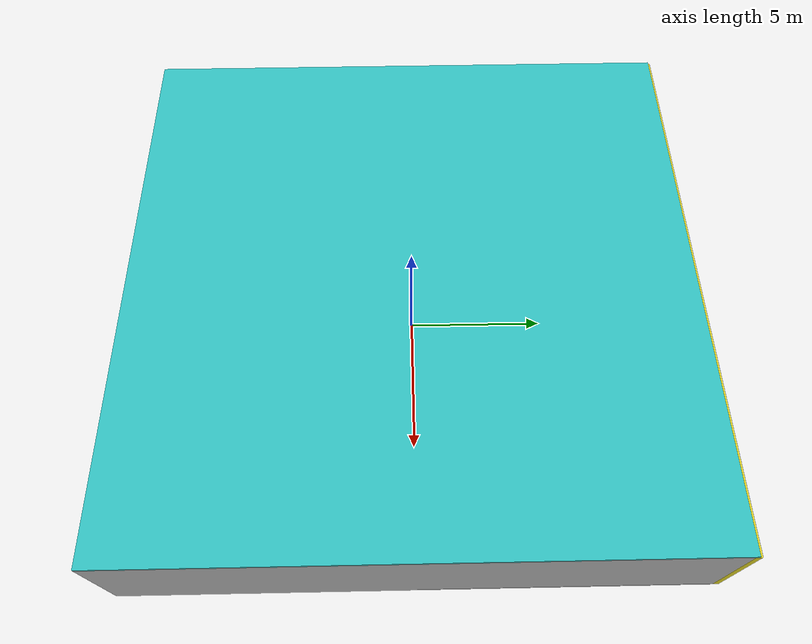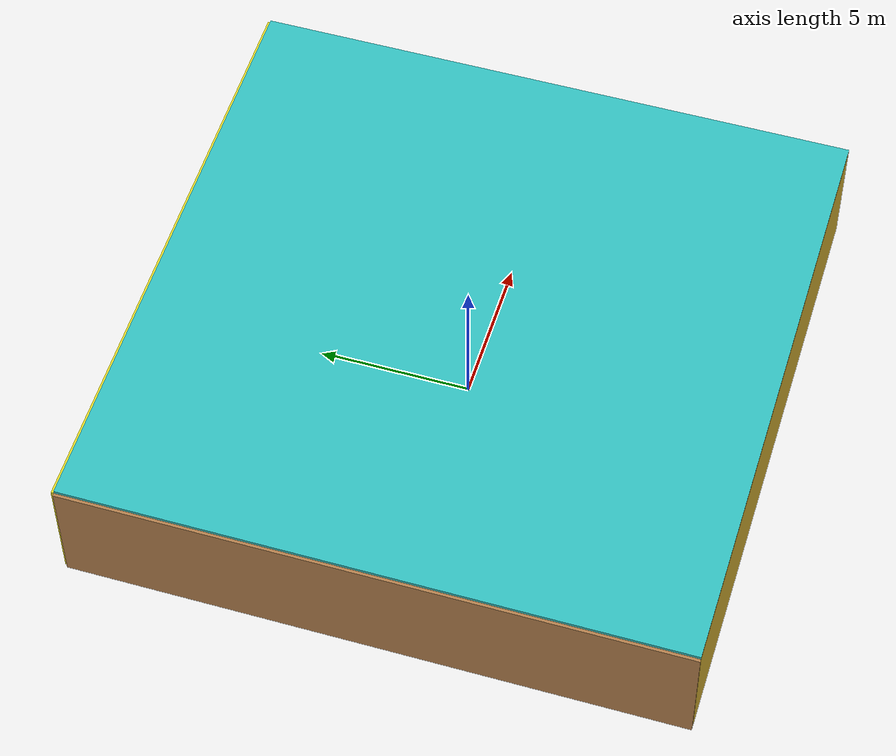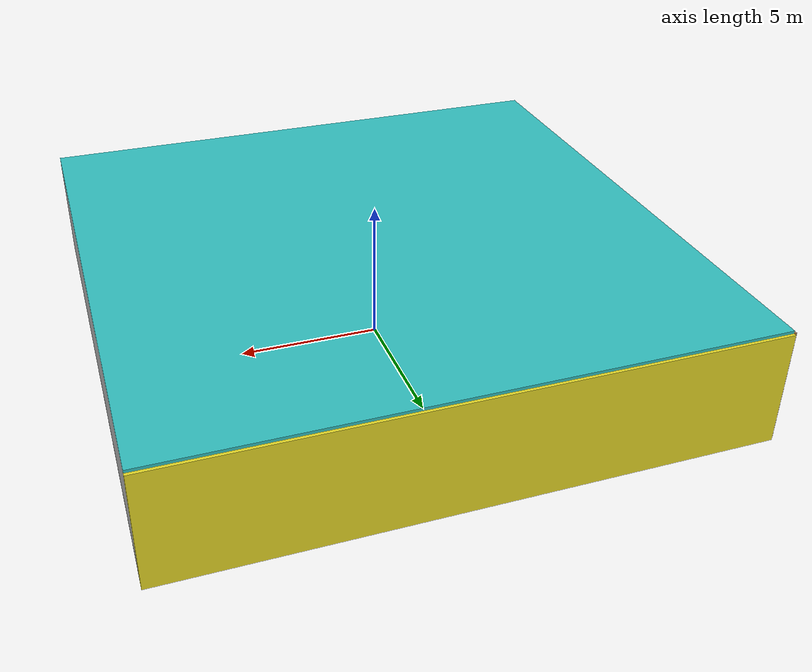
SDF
<sdf version="1.4">
 <world name="default">
  <physics type="ode">
   <max_step_size>0.001</max_step_size>
   <real_time_factor>1</real_time_factor>
   <real_time_update_rate>1000</real_time_update_rate>
   <gravity>0 0 -9.8</gravity>
  </physics>
  <scene><ambient>0.4 0.4 0.4 1</ambient><background>0.7 0.7 0.7 1</background><shadows>1</shadows></scene>
  <model name="Surrounding">
   <static>1</static>
   <link name="Ceiling">
    <collision name="Ceiling_Collision"><geometry><box><size>20 20 0.1</size></box></geometry></collision>
    <visual name="Ceiling_Visual">
     <geometry><box><size>20 20 0.1</size></box></geometry>
     <material>
      <script><uri>file://media/materials/scripts/gazebo.material</uri><name>Gazebo/Turquoise</name></script>
     </material>
    </visual>
    <pose>0 0 4.05 0 0 0</pose>
   </link>
   <link name="Wall_South">
    <collision name="Wall_South_Collision">
     <geometry><box><size>20 0 4</size></box></geometry>
     <pose>0 0 2 0 -0 0</pose>
    </collision>
    <visual name="Wall_South_Visual">
     <pose>0 0 2 0 -0 0</pose>
     <geometry><box><size>20 0 4</size></box></geometry>
     <material>
      <script><uri>file://media/materials/scripts/gazebo.material</uri><name>Gazebo/Gold</name></script>
     </material>
    </visual>
    <velocity_decay><linear>0</linear><angular>0</angular></velocity_decay>
    <pose>0 -10 0 0 -0 0</pose>
   </link>
   <link name="Wall_East">
    <collision name="Wall_21_Collision">
     <geometry><box><size>20 0 4</size></box></geometry>
     <pose>0 0 2 0 -0 0</pose>
    </collision>
    <visual name="Wall_21_Visual">
     <pose>0 0 2 0 -0 0</pose>
     <geometry><box><size>20 0 4</size></box></geometry>
     <material>
      <script><uri>file://media/materials/scripts/gazebo.material</uri><name>Gazebo/LightOff</name></script>
     </material>
    </visual>
    <velocity_decay><linear>0</linear><angular>0</angular></velocity_decay>
    <pose>10 0 0 0 -0 1.5708</pose>
   </link>
   <link name="Wall_North">
    <collision name="Wall_22_Collision">
     <geometry><box><size>20 0.2 4</size></box></geometry>
     <pose>0 0 2 0 -0 0</pose>
    </collision>
    <visual name="Wall_22_Visual">
     <pose>0 0 2 0 -0 0</pose>
     <geometry><box><size>20 0.2 4</size></box></geometry>
     <material>
      <script><uri>file://media/materials/scripts/gazebo.material</uri><name>Gazebo/YellowGlow</name></script>
     </material>
    </visual>
    <velocity_decay><linear>0</linear><angular>0</angular></velocity_decay>
    <pose>0 10 0 0 -0 0</pose>
   </link>
   <link name="Wall_West">
    <collision name="Wall_23_Collision">
     <geometry><box><size>20 0.2 4</size></box></geometry>
     <pose>0 0 2 0 -0 0</pose>
    </collision>
    <visual name="Wall_23_Visual">
     <pose>0 0 2 0 -0 0</pose>
     <geometry><box><size>20 0.2 4</size></box></geometry>
     <material>
      <script><uri>file://media/materials/scripts/gazebo.material</uri><name>Gazebo/WoodPallet</name></script>
     </material>
    </visual>
    <velocity_decay><linear>0</linear><angular>0</angular></velocity_decay>
    <pose>-10 0 0 0 0 -1.5708</pose>
   </link>
   <link name="Ground_link">
    <collision name="collision">
     <pose>0 0 .05 0 -0 0</pose>
     <geometry><box><size>20 20 0.1</size></box></geometry>
    </collision>
    <visual name="visual">
     <pose>0 0 .05 0 -0 0</pose>
     <geometry><box><size>20 20 0.1</size></box></geometry>
     <material>
      <script><uri>file://media/materials/scripts/gazebo.material</uri><name>Gazebo/Pioneer2Body</name></script>
     </material>
    </visual>
   </link>
   <static>1</static>
  </model>
  <spherical_coordinates>
   <surface_model>EARTH_WGS84</surface_model>
   <latitude_deg>0</latitude_deg>
   <longitude_deg>0</longitude_deg>
   <elevation>0</elevation>
   <heading_deg>0</heading_deg>
  </spherical_coordinates>
  <light name="lightball_0" type="diffuse">
   <diffuse>0.8 0.8 0.8 1</diffuse>
   <specular>0.2 0.2 0.2 1</specular>
   <attenuation>
    <range>100</range>
    <constant>0.7</constant>
    <linear>0.01</linear>
    <quadratic>0.001</quadratic>
   </attenuation>
   <direction>-0.5 0.1 -0.9</direction>
   <pose>9.4971725457 1.65004706987 3.30557787476 0 0 0</pose>
  </light>
  <light name="lightball_1" type="diffuse">
   <diffuse>0.8 0.8 0.8 1</diffuse>
   <specular>0.2 0.2 0.2 1</specular>
   <attenuation>
    <range>100</range>
    <constant>0.7</constant>
    <linear>0.01</linear>
    <quadratic>0.001</quadratic>
   </attenuation>
   <direction>-0.5 0.1 -0.9</direction>
   <pose>-4.82446092833 5.16163175182 3.50835382492 0 0 0</pose>
  </light>
  <light name="lightball_2" type="diffuse">
   <diffuse>0.8 0.8 0.8 1</diffuse>
   <specular>0.2 0.2 0.2 1</specular>
   <attenuation>
    <range>100</range>
    <constant>0.7</constant>
    <linear>0.01</linear>
    <quadratic>0.001</quadratic>
   </attenuation>
   <direction>-0.5 0.1 -0.9</direction>
   <pose>-7.69278847775 8.29898351584 2.26286584602 0 0 0</pose>
  </light>
  <light name="lightball_3" type="diffuse">
   <diffuse>0.8 0.8 0.8 1</diffuse>
   <specular>0.2 0.2 0.2 1</specular>
   <attenuation>
    <range>100</range>
    <constant>0.7</constant>
    <linear>0.01</linear>
    <quadratic>0.001</quadratic>
   </attenuation>
   <direction>-0.5 0.1 -0.9</direction>
   <pose>9.05636756897 -4.74955737765 3.71653013308 0 0 0</pose>
  </light>
  <light name="lightball_4" type="diffuse">
   <diffuse>0.8 0.8 0.8 1</diffuse>
   <specular>0.2 0.2 0.2 1</specular>
   <attenuation>
    <range>100</range>
    <constant>0.7</constant>
    <linear>0.01</linear>
    <quadratic>0.001</quadratic>
   </attenuation>
   <direction>-0.5 0.1 -0.9</direction>
   <pose>-2.58486059557 -0.420975342949 2.40709654595 0 0 0</pose>
  </light>
  <light name="lightball_5" type="diffuse">
   <diffuse>0.8 0.8 0.8 1</diffuse>
   <specular>0.2 0.2 0.2 1</specular>
   <attenuation>
    <range>100</range>
    <constant>0.7</constant>
    <linear>0.01</linear>
    <quadratic>0.001</quadratic>
   </attenuation>
   <direction>-0.5 0.1 -0.9</direction>
   <pose>-8.71350002522 -5.25332078217 2.59088918427 0 0 0</pose>
  </light>
  <light name="lightball_6" type="diffuse">
   <diffuse>0.8 0.8 0.8 1</diffuse>
   <specular>0.2 0.2 0.2 1</specular>
   <attenuation>
    <range>100</range>
    <constant>0.7</constant>
    <linear>0.01</linear>
    <quadratic>0.001</quadratic>
   </attenuation>
   <direction>-0.5 0.1 -0.9</direction>
   <pose>-5.46513274 -8.00563826983 1.19089204876 0 0 0</pose>
  </light>
  <include><uri>model://table</uri><pose>-1.9689372605 0.682289745217 0 0 0 2.81082553212</pose></include>
  <include>
   <uri>model://construction_cone</uri>
   <pose>1.67104814357 -5.21771937815 0 0 0 1.55379448162</pose>
  </include>
  <include>
   <uri>model://robocup_3Dsim_goal</uri>
   <pose>0.470853884327 0.420834167346 0 0 0 1.41658284812</pose>
  </include>
  <include>
   <uri>model://textured_shapes</uri>
   <pose>0.588339088795 7.61698197995 0 0 0 1.27299353727</pose>
  </include>
  <include><uri>model://cabinet</uri><pose>5.01191680327 2.59693181139 0 0 0 0.189749778392</pose></include>
 </world>
</sdf>

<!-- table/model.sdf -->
<sdf version="1.5">
  <model name="table">
    <static>true</static>
    <link name="link">
      <collision name="surface">
        <pose>0 0 1.0 0 0 0</pose>
        <geometry>
          <box>
            <size>1.5 0.8 0.03</size>
          </box>
        </geometry>
        <surface>
          <friction>
            <ode>
              <mu>0.6</mu>
              <mu2>0.6</mu2>
            </ode>
          </friction>
        </surface>
      </collision>
      <visual name="visual1">
        <pose>0 0 1.0 0 0 0</pose>
        <geometry>
          <box>
            <size>1.5 0.8 0.03</size>
          </box>
        </geometry>
        <material>
          <script>
            <uri>model://media/materials/scripts/gazebo.material</uri>
            <name>Gazebo/Wood</name>
          </script>
        </material>
      </visual>
      <collision name="front_left_leg">
        <pose>0.68 0.38 0.5 0 0 0</pose>
        <geometry>
          <cylinder>
            <radius>0.02</radius>
            <length>1.0</length>
          </cylinder>
        </geometry>
      </collision>
      <visual name="front_left_leg">
        <pose>0.68 0.38 0.5 0 0 0</pose>
        <geometry>
          <cylinder>
            <radius>0.02</radius>
            <length>1.0</length>
          </cylinder>
        </geometry>
        <material>
          <script>
            <uri>model://media/materials/scripts/gazebo.material</uri>
            <name>Gazebo/Grey</name>
          </script>
        </material>
      </visual>
      <collision name="front_right_leg">
        <pose>0.68 -0.38 0.5 0 0 0</pose>
        <geometry>
          <cylinder>
            <radius>0.02</radius>
            <length>1.0</length>
          </cylinder>
        </geometry>
      </collision>
      <visual name="front_right_leg">
        <pose>0.68 -0.38 0.5 0 0 0</pose>
        <geometry>
          <cylinder>
            <radius>0.02</radius>
            <length>1.0</length>
          </cylinder>
        </geometry>
        <material>
          <script>
            <uri>model://media/materials/scripts/gazebo.material</uri>
            <name>Gazebo/Grey</name>
          </script>
        </material>
      </visual>
      <collision name="back_right_leg">
        <pose>-0.68 -0.38 0.5 0 0 0</pose>
        <geometry>
          <cylinder>
            <radius>0.02</radius>
            <length>1.0</length>
          </cylinder>
        </geometry>
      </collision>
      <visual name="back_right_leg">
        <pose>-0.68 -0.38 0.5 0 0 0</pose>
        <geometry>
          <cylinder>
            <radius>0.02</radius>
            <length>1.0</length>
          </cylinder>
        </geometry>
        <material>
          <script>
            <uri>model://media/materials/scripts/gazebo.material</uri>
            <name>Gazebo/Grey</name>
          </script>
        </material>
      </visual>
      <collision name="back_left_leg">
        <pose>-0.68 0.38 0.5 0 0 0</pose>
        <geometry>
          <cylinder>
            <radius>0.02</radius>
            <length>1.0</length>
          </cylinder>
        </geometry>
      </collision>
      <visual name="back_left_leg">
        <pose>-0.68 0.38 0.5 0 0 0</pose>
        <geometry>
          <cylinder>
            <radius>0.02</radius>
            <length>1.0</length>
          </cylinder>
        </geometry>
        <material>
          <script>
            <uri>model://media/materials/scripts/gazebo.material</uri>
            <name>Gazebo/Grey</name>
          </script>
        </material>
      </visual>
    </link>
  </model>
</sdf>

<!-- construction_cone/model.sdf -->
<sdf version="1.5">
  <model name="Construction Cone">
    <link name="link">
      <collision name="collision">
        <geometry>
          <mesh>
            <scale>10 10 10</scale>
            <uri>file://isr-testbed/construction_cone/meshes/construction_cone.dae</uri>
          </mesh>
        </geometry>
      </collision>
      <visual name="visual">
        <geometry>
          <mesh>
            <scale>10 10 10</scale>
            <uri>file://isr-testbed/construction_cone/meshes/construction_cone.dae</uri>
          </mesh>
        </geometry>
      </visual>
    </link>
  </model>
</sdf>

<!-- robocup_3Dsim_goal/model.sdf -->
<sdf version="1.5">
  <model name="robocup_3d_goal">
    <static>true</static>
    <link name="left_post">
      <pose>0 1.05 0.45 0 0 0</pose>
      <collision name="collision">
        <geometry>
          <cylinder>
            <radius>0.05</radius>
            <length>0.9</length>
          </cylinder>
        </geometry>
      </collision>
      <visual name="visual">
        <geometry>
          <cylinder>
            <radius>0.05</radius>
            <length>0.9</length>
          </cylinder>
        </geometry>
        <material>
          <script>
            <uri>file://media/materials/scripts/gazebo.material</uri>
            <name>Gazebo/ZincYellow</name>
          </script>
        </material>
      </visual>
    </link>
    <link name="left_support_horiz_lower">
      <pose>0.30 1.05 0.01 0 0 0</pose>
      <collision name="collision">
        <geometry>
          <box>
            <size>0.50 0.02 0.02</size>
          </box>
        </geometry>
      </collision>
      <visual name="visual">
        <geometry>
          <box>
            <size>0.50 0.02 0.02</size>
          </box>
        </geometry>
        <material>
          <script>
            <uri>file://media/materials/scripts/gazebo.material</uri>
            <name>Gazebo/White</name>
          </script>
        </material>
      </visual>
    </link>
    <link name="left_support_horiz_upper">
      <pose>0.30 1.05 0.79 0 0 0</pose>
      <collision name="collision">
        <geometry>
          <box>
            <size>0.50 0.02 0.02</size>
          </box>
        </geometry>
      </collision>
      <visual name="visual">
        <geometry>
          <box>
            <size>0.50 0.02 0.02</size>
          </box>
        </geometry>
        <material>
          <script>
            <uri>file://media/materials/scripts/gazebo.material</uri>
            <name>Gazebo/White</name>
          </script>
        </material>
      </visual>
    </link>
    <link name="left_support_vertical">
      <pose>0.56 1.05 0.4 0 1.5708 0</pose>
      <collision name="collision">
        <geometry>
          <box>
            <size>0.80 0.02 0.02</size>
          </box>
        </geometry>
      </collision>
      <visual name="visual">
        <geometry>
          <box>
            <size>0.80 0.02 0.02</size>
          </box>
        </geometry>
        <material>
          <script>
            <uri>file://media/materials/scripts/gazebo.material</uri>
            <name>Gazebo/White</name>
          </script>
        </material>
      </visual>
    </link>
    <link name="right_support_horiz_lower">
      <pose>0.30 -1.05 0.01 0 0 0</pose>
      <collision name="collision">
        <geometry>
          <box>
            <size>0.50 0.02 0.02</size>
          </box>
        </geometry>
      </collision>
      <visual name="visual">
        <geometry>
          <box>
            <size>0.50 0.02 0.02</size>
          </box>
        </geometry>
        <material>
          <script>
            <uri>file://media/materials/scripts/gazebo.material</uri>
            <name>Gazebo/White</name>
          </script>
        </material>
      </visual>
    </link>
    <link name="right_support_horiz_upper">
      <pose>0.30 -1.05 0.79 0 0 0</pose>
      <collision name="collision">
        <geometry>
          <box>
            <size>0.50 0.02 0.02</size>
          </box>
        </geometry>
      </collision>
      <visual name="visual">
        <geometry>
          <box>
            <size>0.50 0.02 0.02</size>
          </box>
        </geometry>
        <material>
          <script>
            <uri>file://media/materials/scripts/gazebo.material</uri>
            <name>Gazebo/White</name>
          </script>
        </material>
      </visual>
    </link>
    <link name="right_support_vertical">
      <pose>0.56 -1.05 0.4 0 1.5708 0</pose>
      <collision name="collision">
        <geometry>
          <box>
            <size>0.80 0.02 0.02</size>
          </box>
        </geometry>
      </collision>
      <visual name="visual">
        <geometry>
          <box>
            <size>0.80 0.02 0.02</size>
          </box>
        </geometry>
        <material>
          <script>
            <uri>file://media/materials/scripts/gazebo.material</uri>
            <name>Gazebo/White</name>
          </script>
        </material>
      </visual>
    </link>
    <link name="center_support_horiz_lower">
      <pose>0.56 0 0.01 0 1.5708 0</pose>
      <collision name="collision">
        <geometry>
          <box>
            <size>0.02 2.08 0.02</size>
          </box>
        </geometry>
      </collision>
      <visual name="visual">
        <geometry>
          <box>
            <size>0.02 2.08 0.02</size>
          </box>
        </geometry>
        <material>
          <script>
            <uri>file://media/materials/scripts/gazebo.material</uri>
            <name>Gazebo/White</name>
          </script>
        </material>
      </visual>
    </link>
    <link name="center_support_horiz_upper">
      <pose>0.56 0 0.79 0 1.5708 0</pose>
      <collision name="collision">
        <geometry>
          <box>
            <size>0.02 2.08 0.02</size>
          </box>
        </geometry>
      </collision>
      <visual name="visual">
        <geometry>
          <box>
            <size>0.02 2.08 0.02</size>
          </box>
        </geometry>
        <material>
          <script>
            <uri>file://media/materials/scripts/gazebo.material</uri>
            <name>Gazebo/White</name>
          </script>
        </material>
      </visual>
    </link>
    <link name="right_post">
      <pose>0 -1.05 0.45 0 0 0</pose>
      <collision name="collision">
        <geometry>
          <cylinder>
            <radius>0.05</radius>
            <length>0.9</length>
          </cylinder>
        </geometry>
      </collision>
      <visual name="visual">
        <geometry>
          <cylinder>
            <radius>0.05</radius>
            <length>0.9</length>
          </cylinder>
        </geometry>
        <material>
          <script>
            <uri>file://media/materials/scripts/gazebo.material</uri>
            <name>Gazebo/ZincYellow</name>
          </script>
        </material>
      </visual>
    </link>
    <link name="crossbar">
      <pose>0 0 0.85 1.57 1.57 0</pose>
      <collision name="collision">
        <geometry>
          <cylinder>
            <radius>0.05</radius>
            <length>2.0</length>
          </cylinder>
        </geometry>
      </collision>
      <visual name="visual">
        <geometry>
          <cylinder>
            <radius>0.05</radius>
            <length>2.0</length>
          </cylinder>
        </geometry>
        <material>
          <script>
            <uri>file://media/materials/scripts/gazebo.material</uri>
            <name>Gazebo/ZincYellow</name>
          </script>
        </material>
      </visual>
    </link>
    <link name="center_net">
      <pose>0.56 0 0.40 0 0 0</pose>
      <collision name="collision">
        <geometry>
          <box>
            <size>0.01 2.1 0.80</size>
          </box>
        </geometry>
      </collision>
      <visual name="visual">
        <geometry>
          <box>
            <size>0.01 2.1 0.80</size>
          </box>
        </geometry>
        <material>
          <script>
            <uri>model://../model_source/models/robocup09_spl_field/materials/scripts/</uri>
            <uri>model://../model_source/models/robocup09_spl_field/materials/textures/</uri>
            <name>RoboCup/Net</name>
          </script>
        </material>
      </visual>
    </link>
    <link name="left_net">
      <pose>0.30 1.05 0.40 0 0 0</pose>
      <collision name="collision">
        <geometry>
          <box>
            <size>0.50 0.01 0.76</size>
          </box>
        </geometry>
      </collision>
      <visual name="visual">
        <geometry>
          <box>
            <size>0.50 0.01 0.76</size>
          </box>
        </geometry>
        <material>
          <script>
            <uri>model://../model_source/models/robocup09_spl_field/materials/scripts/</uri>
            <uri>model://../model_source/models/robocup09_spl_field/materials/textures/</uri>
            <name>RoboCup/Net</name>
          </script>
        </material>
      </visual>
    </link>
    <link name="right_net">
      <pose>0.30 -1.05 0.40 0 0 0</pose>
      <collision name="collision">
        <geometry>
          <box>
            <size>0.50 0.01 0.76</size>
          </box>
        </geometry>
      </collision>
      <visual name="visual">
        <geometry>
          <box>
            <size>0.50 0.01 0.76</size>
          </box>
        </geometry>
        <material>
          <script>
            <uri>model://../model_source/models/robocup09_spl_field/materials/scripts/</uri>
            <uri>model://../model_source/models/robocup09_spl_field/materials/textures/</uri>
            <name>RoboCup/Net</name>
          </script>
        </material>
      </visual>
    </link>
  </model>
</sdf>

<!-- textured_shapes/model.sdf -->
<sdf version="1.6">
  <model name="textured_shapes">
    <pose>0 0 0.5 0 0 0</pose>
    <link name="box">
      <pose>0 -1.5 0 0 0 0</pose>
      <collision name="collision">
        <geometry>
          <box>
            <size>1 1 1</size>
          </box>
        </geometry>
      </collision>
      <visual name="visual">
        <geometry>
          <box>
            <size>1 1 1</size>
          </box>
        </geometry>
        <material>
          <script>
            <uri>model://../model_source/models/textured_shapes/materials/scripts</uri>
            <uri>model://../model_source/models/textured_shapes/materials/textures</uri>
            <name>TexturedShape/Squares</name>
          </script>
        </material>
      </visual>
    </link>
    <link name="sphere">
      <collision name="collision">
        <geometry>
          <sphere>
            <radius>0.5</radius>
          </sphere>
        </geometry>
      </collision>
      <visual name="visual">
        <geometry>
          <sphere>
            <radius>0.5</radius>
          </sphere>
        </geometry>
        <material>
          <script>
            <uri>model://../model_source/models/textured_shapes/materials/scripts</uri>
            <uri>model://../model_source/models/textured_shapes/materials/textures</uri>
            <name>TexturedShape/Squares</name>
          </script>
        </material>
      </visual>
    </link>
    <link name="cylinder">
      <pose>0 1.5 0 0 0 0</pose>
      <collision name="collision">
        <geometry>
          <cylinder>
            <radius>0.5</radius>
            <length>1</length>
          </cylinder>
        </geometry>
      </collision>
      <visual name="visual">
        <geometry>
          <cylinder>
            <radius>0.5</radius>
            <length>1</length>
          </cylinder>
        </geometry>
        <material>
          <script>
            <uri>model://../model_source/models/textured_shapes/materials/scripts</uri>
            <uri>model://../model_source/models/textured_shapes/materials/textures</uri>
            <name>TexturedShape/Squares</name>
          </script>
        </material>
      </visual>
    </link>
  </model>
</sdf>

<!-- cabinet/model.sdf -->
<sdf version="1.5">
  <model name="cabinet">
    <static>true</static>
    <link name="cabinet_bottom_plate">
      <inertial>
        <pose>0 0 -1 0 0 0</pose>
        <inertia>
          <ixx>2.050000</ixx>
          <ixy>0</ixy>
          <ixz>0</ixz>
          <iyy>2.050000</iyy>
          <iyz>0</iyz>
          <izz>2.050000</izz>
        </inertia>
        <mass>25.000000</mass>
      </inertial>
      <collision name="cabinet_bottom_plate_geom">
        <pose>0 0 0.010000 0 0 0</pose>
        <geometry>
          <box>
            <size>0.450000 0.450000 0.020000</size>
          </box>
        </geometry>
      </collision>
      <visual name="cabinet_bottom_plate_geom_visual">
        <pose>0 0 0.010000 0 0 0</pose>
        <geometry>
          <box>
            <size>0.450000 0.450000 0.020000</size>
          </box>
        </geometry>
        <material>
          <script>
            <uri>model://media/materials/scripts/gazebo.material</uri>
            <name>Gazebo/Wood</name>
          </script>
        </material>
      </visual>
      <collision name="cabinet_bottom_plate_geom_cabinet_back_plate">
        <pose>0.235000 0 0.510000 0 0 0</pose>
        <geometry>
          <box>
            <size>0.020000 0.450000 1.020000</size>
          </box>
        </geometry>
      </collision>
      <visual name="cabinet_bottom_plate_geom_cabinet_back_plate_visual">
        <pose>0.235000 0 0.510000 0 0 0</pose>
        <geometry>
          <box>
            <size>0.020000 0.450000 1.020000</size>
          </box>
        </geometry>
        <material>
          <script>
            <uri>model://media/materials/scripts/gazebo.material</uri>
            <name>Gazebo/Wood</name>
          </script>
        </material>
      </visual>
      <collision name="cabinet_bottom_plate_geom_cabinet_left_plate">
        <pose>0 0.235000 0.510000 0 0 0</pose>
        <geometry>
          <box>
            <size>0.450000 0.020000 1.020000</size>
          </box>
        </geometry>
      </collision>
      <visual name="cabinet_bottom_plate_geom_cabinet_left_plate_visual">
        <pose>0 0.235000 0.510000 0 0 0</pose>
        <geometry>
          <box>
            <size>0.450000 0.020000 1.020000</size>
          </box>
        </geometry>
        <material>
          <script>
            <uri>model://media/materials/scripts/gazebo.material</uri>
            <name>Gazebo/Wood</name>
          </script>
        </material>
      </visual>
      <collision name="cabinet_bottom_plate_geom_cabinet_middle_plate">
        <pose>0 0 0.510000 0 0 0</pose>
        <geometry>
          <box>
            <size>0.450000 0.450000 0.020000</size>
          </box>
        </geometry>
      </collision>
      <visual name="cabinet_bottom_plate_geom_cabinet_middle_plate_visual">
        <pose>0 0 0.510000 0 0 0</pose>
        <geometry>
          <box>
            <size>0.450000 0.450000 0.020000</size>
          </box>
        </geometry>
        <material>
          <script>
            <uri>model://media/materials/scripts/gazebo.material</uri>
            <name>Gazebo/Wood</name>
          </script>
        </material>
      </visual>
      <collision name="cabinet_bottom_plate_geom_cabinet_right_plate">
        <pose>0 -0.235000 0.510000 0 0 0</pose>
        <geometry>
          <box>
            <size>0.450000 0.020000 1.020000</size>
          </box>
        </geometry>
      </collision>
      <visual name="cabinet_bottom_plate_geom_cabinet_right_plate_visual">
        <pose>0 -0.235000 0.510000 0 0 0</pose>
        <geometry>
          <box>
            <size>0.450000 0.020000 1.020000</size>
          </box>
        </geometry>
        <material>
          <script>
            <uri>model://media/materials/scripts/gazebo.material</uri>
            <name>Gazebo/Wood</name>
          </script>
        </material>
      </visual>
      <collision name="cabinet_bottom_plate_geom_cabinet_top_plate">
        <pose>0 0 1.010000 0 0 0</pose>
        <geometry>
          <box>
            <size>0.450000 0.450000 0.020000</size>
          </box>
        </geometry>
      </collision>
      <visual name="cabinet_bottom_plate_geom_cabinet_top_plate_visual">
        <pose>0 0 1.010000 0 0 0</pose>
        <geometry>
          <box>
            <size>0.450000 0.450000 0.020000</size>
          </box>
        </geometry>
        <material>
          <script>
            <uri>model://media/materials/scripts/gazebo.material</uri>
            <name>Gazebo/Wood</name>
          </script>
        </material>
      </visual>
    </link>
  </model>
</sdf>
